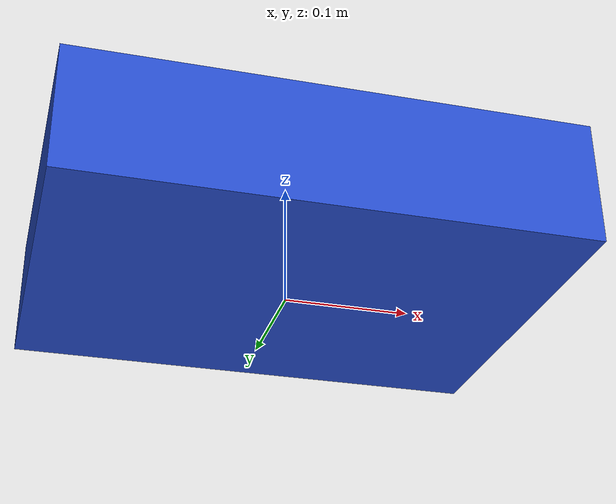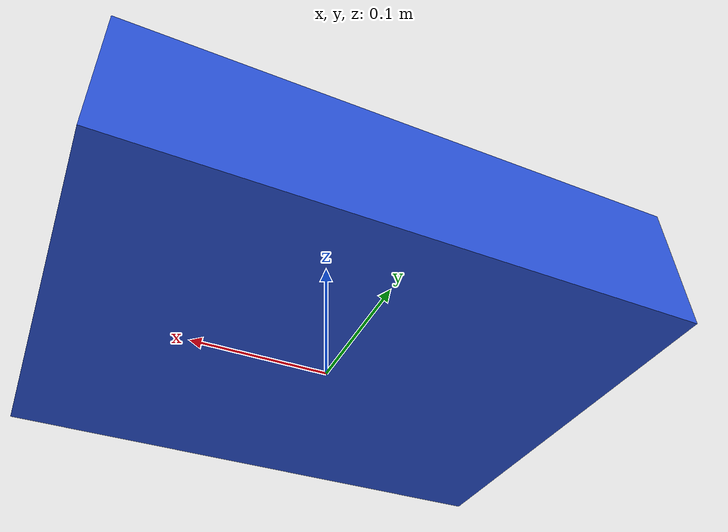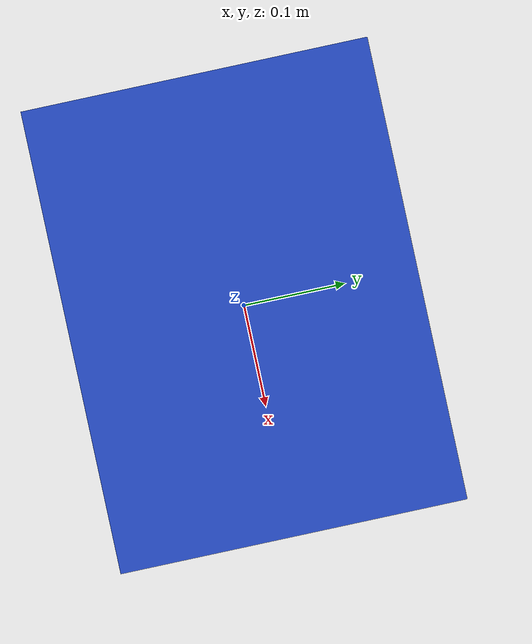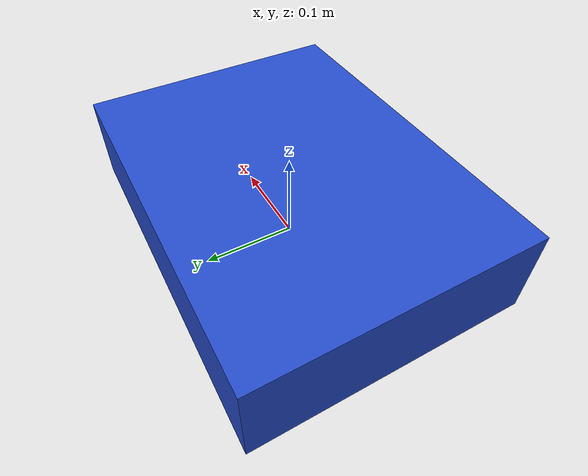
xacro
<?xml version="1.0"?>

<robot xmlns:xacro="http://www.ros.org/wiki/xacro">

  <!-- Robot dimensions -->
  <xacro:property name="body_length" value="0.40"/>
  <xacro:property name="body_width"  value="0.30"/>
  <xacro:property name="body_height" value="0.10"/>

  <!-- Base footprint -->
  <link name="base_footprint"/>

  <!-- Chassis -->
  <link name="base_link">

    <visual>
      <origin xyz="0 0 ${body_height/2}" rpy="0 0 0"/>
      <geometry>
        <box size="${body_length} ${body_width} ${body_height}"/>
      </geometry>
      <material name="blue"/>
    </visual>

    <collision>
      <origin xyz="0 0 ${body_height/2}" rpy="0 0 0"/>
      <geometry>
        <box size="${body_length} ${body_width} ${body_height}"/>
      </geometry>
    </collision>

    <inertial>
      <origin xyz="0 0 ${body_height/2}"/>
      <mass value="8.0"/>

      <inertia
          ixx="0.08"
          ixy="0"
          ixz="0"
          iyy="0.12"
          iyz="0"
          izz="0.15"/>
    </inertial>

  </link>

  <!-- Fixed joint -->
  <joint name="base_joint" type="fixed">
      <parent link="base_footprint"/>
      <child link="base_link"/>
      <origin xyz="0 0 0"/>
  </joint>

</robot>
